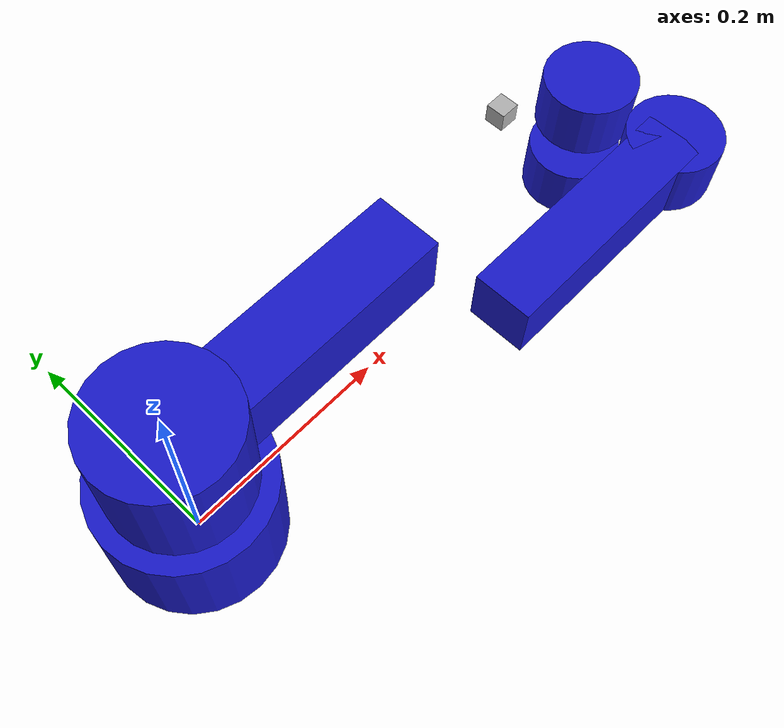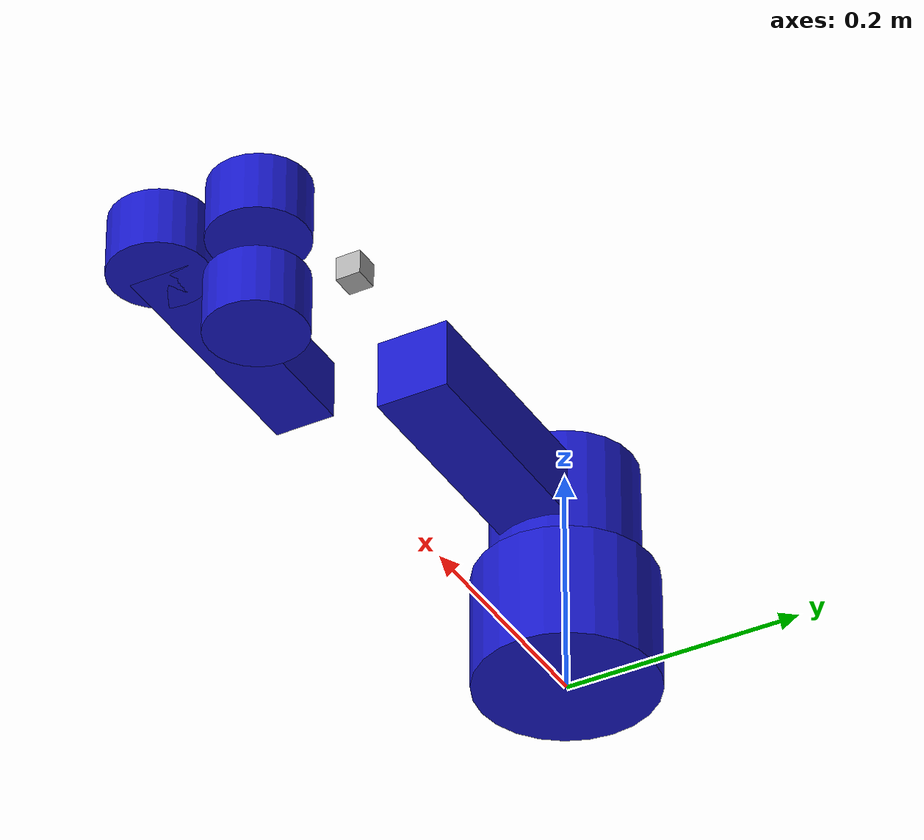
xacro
<?xml version="1.0"?>
<robot xmlns:xacro="http://wiki.ros.org/xacro" name="ur3_colored_shapes">
    <!-- Parameters -->
    <!-- Using the built-in pi constant from xacro -->

    <!-- Materials -->
    <material name="UR_Blue">
      <color rgba="0.1 0.1 0.8 1.0"/>
    </material>

    <material name="Grey">
      <color rgba="0.7 0.7 0.7 1.0"/>
    </material>

    <!-- UR3 specific dimensions -->
    <xacro:property name="shoulder_height" value="0.1519"/>
    <xacro:property name="upper_arm_length" value="0.24365"/>
    <xacro:property name="forearm_length" value="0.21325"/>
    <xacro:property name="wrist_1_length" value="0.08535"/>
    <xacro:property name="wrist_2_length" value="0.08535"/>
    <xacro:property name="wrist_3_length" value="0.08195"/>

    <!-- Links -->
    <link name="world"/>

    <link name="base_link">
      <visual>
        <origin xyz="0 0 0.05" rpy="0 0 0"/>
        <geometry>
          <cylinder radius="0.075" length="0.1"/>
        </geometry>
        <material name="UR_Blue"/>
      </visual>
      <collision>
        <origin xyz="0 0 0.05" rpy="0 0 0"/>
        <geometry>
          <cylinder radius="0.075" length="0.1"/>
        </geometry>
      </collision>
      <inertial>
        <mass value="4.0"/>
        <origin xyz="0 0 0" rpy="0 0 0"/>
        <inertia ixx="0.00443333156" ixy="0.0" ixz="0.0" iyy="0.00443333156" iyz="0.0" izz="0.0072"/>
      </inertial>
    </link>

    <joint name="world_joint" type="fixed">
      <parent link="world"/>
      <child link="base_link"/>
      <origin xyz="0 0 0" rpy="0 0 0"/>
      <dynamics damping="0.0" friction="0.0"/>
    </joint>

    <link name="shoulder_link">
      <visual>
        <origin xyz="0 0 0" rpy="0 0 0"/>
        <geometry>
          <cylinder radius="0.06" length="0.1"/>
        </geometry>
        <material name="UR_Blue"/>
      </visual>
      <collision>
        <origin xyz="0 0 0" rpy="0 0 0"/>
        <geometry>
          <cylinder radius="0.06" length="0.1"/>
        </geometry>
      </collision>
      <inertial>
        <mass value="3.7"/>
        <origin xyz="0 0 0" rpy="0 0 0"/>
        <inertia ixx="0.010267495893" ixy="0.0" ixz="0.0" iyy="0.010267495893" iyz="0.0" izz="0.00666"/>
      </inertial>
    </link>

    <joint name="shoulder_pan_joint" type="revolute">
      <parent link="base_link"/>
      <child link="shoulder_link"/>
      <origin xyz="0 0 ${shoulder_height}" rpy="0 0 0"/>
      <axis xyz="0 0 1"/>
      <limit lower="${-2*pi}" upper="${2*pi}" effort="150.0" velocity="3.15"/>
      <dynamics damping="0.0" friction="0.0"/>
    </joint>

    <link name="upper_arm_link">
      <visual>
        <origin xyz="0 0 ${upper_arm_length/2}" rpy="0 0 0"/>
        <geometry>
          <box size="0.06 0.06 ${upper_arm_length}"/>
        </geometry>
        <material name="UR_Blue"/>
      </visual>
      <collision>
        <origin xyz="0 0 ${upper_arm_length/2}" rpy="0 0 0"/>
        <geometry>
          <box size="0.06 0.06 ${upper_arm_length}"/>
        </geometry>
      </collision>
      <inertial>
        <mass value="8.393"/>
        <origin xyz="0 0 ${upper_arm_length/2}" rpy="0 0 0"/>
        <inertia ixx="0.22689067591" ixy="0.0" ixz="0.0" iyy="0.22689067591" iyz="0.0" izz="0.0151074"/>
      </inertial>
    </link>

    <joint name="shoulder_lift_joint" type="revolute">
      <parent link="shoulder_link"/>
      <child link="upper_arm_link"/>
      <origin xyz="0 0 0" rpy="0 ${pi/2} 0"/>
      <axis xyz="0 1 0"/>
      <limit lower="${-2*pi}" upper="${2*pi}" effort="150.0" velocity="3.15"/>
      <dynamics damping="0.0" friction="0.0"/>
    </joint>

    <link name="forearm_link">
      <visual>
        <origin xyz="0 0 ${forearm_length/2}" rpy="0 0 0"/>
        <geometry>
          <box size="0.05 0.05 ${forearm_length}"/>
        </geometry>
        <material name="UR_Blue"/>
      </visual>
      <collision>
        <origin xyz="0 0 ${forearm_length/2}" rpy="0 0 0"/>
        <geometry>
          <box size="0.05 0.05 ${forearm_length}"/>
        </geometry>
      </collision>
      <inertial>
        <mass value="2.275"/>
        <origin xyz="0 0 ${forearm_length/2}" rpy="0 0 0"/>
        <inertia ixx="0.049443313556" ixy="0.0" ixz="0.0" iyy="0.049443313556" iyz="0.0" izz="0.004095"/>
      </inertial>
    </link>

    <joint name="elbow_joint" type="revolute">
      <parent link="upper_arm_link"/>
      <child link="forearm_link"/>
      <origin xyz="0 -0.093 ${upper_arm_length}" rpy="0 0 0"/>
      <axis xyz="0 1 0"/>
      <limit lower="${-2*pi}" upper="${2*pi}" effort="150.0" velocity="3.15"/>
      <dynamics damping="0.0" friction="0.0"/>
    </joint>

    <link name="wrist_1_link">
      <visual>
        <origin xyz="0 0 0" rpy="0 0 0"/>
        <geometry>
          <cylinder radius="0.04" length="0.05"/>
        </geometry>
        <material name="UR_Blue"/>
      </visual>
      <collision>
        <origin xyz="0 0 0" rpy="0 0 0"/>
        <geometry>
          <cylinder radius="0.04" length="0.05"/>
        </geometry>
      </collision>
      <inertial>
        <mass value="1.219"/>
        <origin xyz="0 0 0" rpy="0 0 0"/>
        <inertia ixx="0.111172755531" ixy="0.0" ixz="0.0" iyy="0.111172755531" iyz="0.0" izz="0.21942"/>
      </inertial>
    </link>

    <joint name="wrist_1_joint" type="revolute">
      <parent link="forearm_link"/>
      <child link="wrist_1_link"/>
      <origin xyz="0 0 ${forearm_length}" rpy="0 ${pi/2} 0"/>
      <axis xyz="0 1 0"/>
      <limit lower="${-2*pi}" upper="${2*pi}" effort="28.0" velocity="3.2"/>
      <dynamics damping="0.0" friction="0.0"/>
    </joint>

    <link name="wrist_2_link">
      <visual>
        <origin xyz="0 0 0" rpy="0 0 0"/>
        <geometry>
          <cylinder radius="0.04" length="0.05"/>
        </geometry>
        <material name="UR_Blue"/>
      </visual>
      <collision>
        <origin xyz="0 0 0" rpy="0 0 0"/>
        <geometry>
          <cylinder radius="0.04" length="0.05"/>
        </geometry>
      </collision>
      <inertial>
        <mass value="1.219"/>
        <origin xyz="0 0 0" rpy="0 0 0"/>
        <inertia ixx="0.111172755531" ixy="0.0" ixz="0.0" iyy="0.111172755531" iyz="0.0" izz="0.21942"/>
      </inertial>
    </link>

    <joint name="wrist_2_joint" type="revolute">
      <parent link="wrist_1_link"/>
      <child link="wrist_2_link"/>
      <origin xyz="0 ${wrist_1_length} 0" rpy="0 0 0"/>
      <axis xyz="0 0 1"/>
      <limit lower="${-2*pi}" upper="${2*pi}" effort="28.0" velocity="3.2"/>
      <dynamics damping="0.0" friction="0.0"/>
    </joint>

    <link name="wrist_3_link">
      <visual>
        <origin xyz="0 0 0" rpy="0 0 0"/>
        <geometry>
          <cylinder radius="0.04" length="0.05"/>
        </geometry>
        <material name="UR_Blue"/>
      </visual>
      <collision>
        <origin xyz="0 0 0" rpy="0 0 0"/>
        <geometry>
          <cylinder radius="0.04" length="0.05"/>
        </geometry>
      </collision>
      <inertial>
        <mass value="0.1879"/>
        <origin xyz="0 0 0" rpy="0 0 0"/>
        <inertia ixx="0.0171364731454" ixy="0.0" ixz="0.0" iyy="0.0171364731454" iyz="0.0" izz="0.033822"/>
      </inertial>
    </link>

    <joint name="wrist_3_joint" type="revolute">
      <parent link="wrist_2_link"/>
      <child link="wrist_3_link"/>
      <origin xyz="0 0 ${wrist_2_length}" rpy="0 0 0"/>
      <axis xyz="0 1 0"/>
      <limit lower="${-2*pi}" upper="${2*pi}" effort="28.0" velocity="3.2"/>
      <dynamics damping="0.0" friction="0.0"/>
    </joint>

    <link name="tool0">
      <visual>
        <origin xyz="0 0 0" rpy="0 0 0"/>
        <geometry>
          <box size="0.02 0.02 0.02"/>
        </geometry>
        <material name="Grey"/>
      </visual>
    </link>

    <joint name="wrist_3_link-tool0_fixed_joint" type="fixed">
      <parent link="wrist_3_link"/>
      <child link="tool0"/>
      <origin xyz="0 ${wrist_3_length} 0" rpy="${pi/2} 0 0"/>
    </joint>
</robot>
